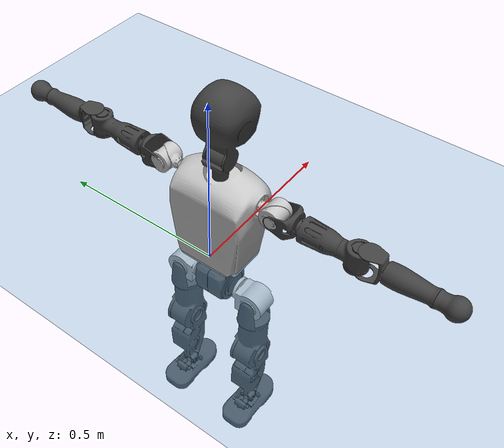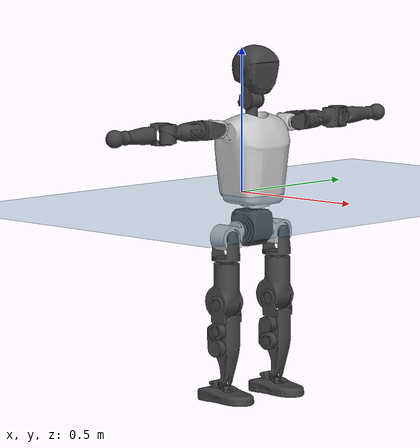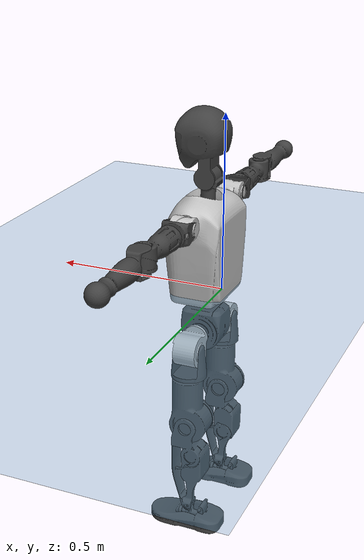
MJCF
<mujoco model="T1">
  <compiler angle="radian" assetdir="assets" balanceinertia="true" inertiafromgeom="false"/>

  <option timestep="0.005" density="1.2" viscosity="2e-05"/>

  <size nkey="1"/>

  <visual>
    <quality shadowsize="8192"/>
    <map shadowclip="0.5"/>
  </visual>

  <default>
    <default class="/">
      <joint armature="0.01" damping="0.01" frictionloss="0.1"/>
      <geom contype="0" conaffinity="0" group="1" solref="-1000 -80"/>
      <site size="0.01 0.005 0.005" group="5"/>
      <general forcelimited="true" biastype="affine" gainprm="25" biasprm="0 -25 -0.6"/>
      <default class="t1">
        <geom rgba="0.25 0.25 0.25 1"/>
        <default class="visual">
          <geom type="mesh" group="2"/>
        </default>
        <default class="collision">
          <geom group="3"/>
        </default>
        <default class="foot">
          <geom size="0.1115 0.05 0.015" type="box" condim="6" group="4" priority="1" solimp="0.015 1 0.015"/>
        </default>
        <default class="reward_collision_sphere">
          <geom group="5" rgba="1 0 0 1"/>
        </default>
      </default>
    </default>
  </default>

  <asset>
    <texture type="skybox" colorspace="auto" name="//unnamed_texture_0" builtin="gradient" rgb1="0.95 0.95 0.95" rgb2="0.95 0.95 0.95" width="100" height="600"/>
    <texture type="2d" colorspace="auto" name="texplane" builtin="checker" rgb1="0.345 0.575 0.748" rgb2="0.345 0.575 0.748" markrgb="1 1 1" width="512" height="512"/>
    <material name="MatPlane" class="/" texture="texplane" texuniform="true" texrepeat="2 2" specular="0.9"/>
    <mesh name="Trunk" class="/" file="Trunk.stl"/>
    <mesh name="H1" class="/" file="H1.stl"/>
    <mesh name="H2" class="/" file="H2.stl"/>
    <mesh name="AL1" class="/" file="AL1.stl"/>
    <mesh name="AL2" class="/" file="AL2.stl"/>
    <mesh name="AL3" class="/" file="AL3.stl"/>
    <mesh name="left_hand_link" class="/" file="left_hand_link.stl"/>
    <mesh name="AR1" class="/" file="AR1.stl"/>
    <mesh name="AR2" class="/" file="AR2.stl"/>
    <mesh name="AR3" class="/" file="AR3.stl"/>
    <mesh name="right_hand_link" class="/" file="right_hand_link.stl"/>
    <mesh name="Waist" class="/" file="Waist.stl"/>
    <mesh name="Hip_Pitch_Left" class="/" file="Hip_Pitch_Left.stl"/>
    <mesh name="Hip_Roll_Left" class="/" file="Hip_Roll_Left.stl"/>
    <mesh name="Hip_Yaw_Left" class="/" file="Hip_Yaw_Left.stl"/>
    <mesh name="Shank_Left" class="/" file="Shank_Left.stl"/>
    <mesh name="Ankle_Cross_Left" class="/" file="Ankle_Cross_Left.stl"/>
    <mesh name="left_foot_link" class="/" file="left_foot_link.stl"/>
    <mesh name="Hip_Pitch_Right" class="/" file="Hip_Pitch_Right.stl"/>
    <mesh name="Hip_Roll_Right" class="/" file="Hip_Roll_Right.stl"/>
    <mesh name="Hip_Yaw_Right" class="/" file="Hip_Yaw_Right.stl"/>
    <mesh name="Shank_Right" class="/" file="Shank_Right.stl"/>
    <mesh name="Ankle_Cross_Right" class="/" file="Ankle_Cross_Right.stl"/>
    <mesh name="right_foot_link" class="/" file="right_foot_link.stl"/>
  </asset>

  <worldbody>
    <geom name="floor" class="/" size="100 100 0.125" type="plane" group="0" material="MatPlane"/>
    <light name="toplight_shadow" class="/" pos="0 0 5" dir="0.0990148 0.0990148 -0.990148" type="directional" ambient="0.04 0.04 0.04" diffuse="0.55 0.55 0.55" specular="0.12 0.12 0.12"/>
    <light name="toplight_fill" class="/" pos="0 0 5" dir="0.0990148 0.0990148 -0.990148" type="directional" castshadow="false" ambient="0.04 0.04 0.04" diffuse="0.3 0.3 0.3" specular="0.08 0.08 0.08"/>
    <body name="trunk" childclass="t1" pos="8.84786e-05 0.000775106 0.000609378" quat="1 0.000135114 -1.06937e-05 4.34299e-05">
      <inertial pos="0.0395179 0.00109114 0.112592" quat="0.999949 -0.00130698 -0.00974148 -0.00226945" mass="11.6382" diaginertia="0.0204322 0.18093 0.0762665"/>
      <joint name="//unnamed_joint_0" type="free" armature="0" damping="0" frictionloss="0"/>
      <geom name="//unnamed_geom_1" class="visual" rgba="0.76 0.76 0.76 1" mesh="Trunk"/>
      <geom name="//unnamed_geom_2" class="collision" size="0.074616 0.099488 0.149232" pos="0.0443275 0 0.127447" type="box"/>
      <geom name="//unnamed_geom_3" class="reward_collision_sphere" size="0.114411" pos="0.0443275 0 0.106205"/>
      <geom name="//unnamed_geom_4" class="reward_collision_sphere" size="0.0149232" pos="0.0443275 0.100623 0"/>
      <geom name="//unnamed_geom_5" class="reward_collision_sphere" size="0.0149232" pos="0.0443275 -0.100623 0"/>
      <geom name="//unnamed_geom_6" class="reward_collision_sphere" size="0.0149232" pos="0.0443275 0.126666 0.19117"/>
      <geom name="//unnamed_geom_7" class="reward_collision_sphere" size="0.0149232" pos="0.0443275 -0.126666 0.19117"/>
      <site name="imu" pos="0.00425853 0.00488117 -0.000610359" size="0.0099488"/>
      <camera name="track" pos="0 -2.36759 0" quat="0.707107 0.707107 0 0" mode="trackcom"/>
      <camera name="ego_camera" pos="0.0901326 0 0.446063" quat="-0.5 -0.5 0.5 0.5"/>
      <body name="H1" pos="0.046542 -0.000953088 0.258241" quat="1 1.81862e-06 1.43953e-06 7.35179e-07">
        <inertial pos="-0.00117795 -0.000142919 0.060528" quat="0.763776 -0.0168726 0.00240953 0.645256" mass="0.438184" diaginertia="5.26007e-05 0.000518908 0.00020438"/>
        <joint name="AAHead_yaw" pos="0 0 0" axis="-0.00368666 -0.00257516 0.99999" stiffness="0.00292466" range="-1.56929 1.54996" armature="0.0100231" damping="0.0100167" frictionloss="0.0902059"/>
        <geom name="//unnamed_geom_8" class="visual" mesh="H1"/>
        <body name="H2" pos="-0.000210414 0.000635241 0.0649876" quat="1 4.12685e-06 -5.33634e-05 7.86197e-05">
          <inertial pos="0.00603893 -5.41839e-06 0.105296" quat="0.988974 0.104305 -0.0691039 -0.0792201" mass="0.618009" diaginertia="0.000447895 0.0044596 0.00231781"/>
          <joint name="Head_pitch" pos="0 0 0" axis="-0.000312478 -1 -0.000668806" range="-1.21729 0.35127" armature="0.00987392" damping="0.00817415" frictionloss="0.102353"/>
          <geom name="//unnamed_geom_9" class="visual" mesh="H2"/>
          <geom name="//unnamed_geom_10" class="collision" size="0.0795904" pos="0.00738791 0 0.116826"/>
          <geom name="//unnamed_geom_11" class="reward_collision_sphere" size="0.0895392" pos="0.0147758 0 0.106205"/>
        </body>
      </body>
      <body name="AL1" pos="0.0439045 0.126529 0.23363" quat="1 0.000467769 0.000813717 -0.00017904">
        <inertial pos="-0.000599058 0.0540611 0.000986685" quat="0.504053 0.496183 -0.508301 0.491287" mass="0.524771" diaginertia="0.000298657 0.00305261 0.00039656"/>
        <joint name="Left_Shoulder_Pitch" pos="0 0 0" axis="0.00198073 0.999998 -0.000155866" range="-3.30684 1.23058" armature="0.0100084" damping="0.0145263" frictionloss="0.0988718"/>
        <geom name="//unnamed_geom_12" class="visual" rgba="0.76 0.76 0.76 1" mesh="AL1"/>
        <body name="AL2" pos="0.000761024 0.057134 0.000676289" quat="1 0.000339486 -0.000133504 -0.000116103">
          <inertial pos="0.00393036 0.0463485 -0.00104408" quat="0.488971 0.516363 -0.489623 0.504525" mass="0.155779" diaginertia="8.8012e-05 0.000804055 0.000241884"/>
          <joint name="Left_Shoulder_Roll" pos="0 0 0" axis="-0.999998 0.000369867 -0.00171418" range="-1.57045 1.73695" armature="0.00979761" damping="0.00373401" frictionloss="0.0981575"/>
          <geom name="//unnamed_geom_13" class="visual" mesh="AL2"/>
          <body name="AL3" pos="0.000695781 0.0739224 -0.000293529" quat="1 4.61365e-05 2.90412e-05 5.25244e-05">
            <inertial pos="-0.00149261 0.100934 0.000611362" quat="0.708239 0.705972 -0.000244323 -0.000539008" mass="1.00771" diaginertia="0.00285425 0.0300329 0.000839712"/>
            <joint name="Left_Elbow_Pitch" pos="0 0 0" axis="0.00285489 -0.99999 0.00349471" range="-2.26367 2.29094" armature="0.00977233" damping="0.00968529" frictionloss="0.100734"/>
            <geom name="//unnamed_geom_14" class="visual" mesh="AL3"/>
            <geom name="//unnamed_geom_15" class="collision" size="0.0298464 0.074616" pos="0 0.0591897 0" quat="0.707105 0.707108 0 0" type="cylinder"/>
            <geom name="//unnamed_geom_16" class="reward_collision_sphere" size="0.0358157"/>
            <body name="left_hand_link" pos="-0.000542727 0.175753 -0.000473683" quat="1 0.000244232 -0.00011705 0.000102221">
              <inertial pos="-5.55165e-05 0.129264 0.000643776" quat="0.707933 0.706277 -0.000598139 -0.00176748" mass="0.324487" diaginertia="0.0017897 0.0189965 0.000288821"/>
              <joint name="Left_Elbow_Yaw" pos="0 0 0" axis="-0.00513691 -0.000333837 0.999987" stiffness="0.000861092" range="-2.46715 0.00463087" armature="0.00999952" damping="0.00224066" frictionloss="0.100205"/>
              <geom name="//unnamed_geom_17" class="visual" mesh="left_hand_link"/>
              <geom name="//unnamed_geom_18" class="collision" size="0.0298464 0.087052" pos="0 0.153893 0" quat="0.707105 0.707108 0 0" type="cylinder"/>
              <geom name="//unnamed_geom_19" class="reward_collision_sphere" size="0.049744"/>
              <geom name="//unnamed_geom_20" class="reward_collision_sphere" size="0.0348208" pos="0 0.130217 0"/>
              <geom name="//unnamed_geom_21" class="reward_collision_sphere" size="0.0348208" pos="0 0.254516 0"/>
            </body>
          </body>
        </body>
      </body>
      <body name="AR1" pos="0.0423689 -0.125278 0.232854" quat="1 3.10005e-05 0.000218161 0.000108936">
        <inertial pos="-0.00029452 -0.0535312 -0.00128122" quat="0.499542 0.499135 -0.504401 0.496893" mass="0.51972" diaginertia="0.000297451 0.00293702 0.000389312"/>
        <joint name="Right_Shoulder_Pitch" pos="0 0 0" axis="0.00476616 -0.999988 0.000535727" range="-1.22494 3.31272" armature="0.0102347" damping="0.00185806" frictionloss="0.0923287"/>
        <geom name="//unnamed_geom_22" class="visual" rgba="0.76 0.76 0.76 1" mesh="AR1"/>
        <body name="AR2" pos="-0.00148318 -0.055294 -0.000438226" quat="1 4.25709e-05 4.22768e-05 0.000105032">
          <inertial pos="0.00368949 -0.0466166 0.000567073" quat="0.51135 0.49287 -0.510454 0.484806" mass="0.156586" diaginertia="8.65935e-05 0.000801002 0.000234622"/>
          <joint name="Right_Shoulder_Roll" pos="0 0 0" axis="-0.999983 0.0057651 0.000699922" stiffness="0.00211322" range="-1.74258 1.5728" armature="0.00995991" damping="0" frictionloss="0.0988111"/>
          <geom name="//unnamed_geom_23" class="visual" mesh="AR2"/>
          <body name="AR3" pos="2.85385e-05 -0.0722791 0.000675931" quat="1 8.88372e-05 -0.000386321 -0.00024029">
            <inertial pos="-0.000781708 -0.101347 -0.000180904" quat="0.709076 0.705128 0.00222119 0.000791643" mass="0.994887" diaginertia="0.00280509 0.0288763 0.000837509"/>
            <joint name="Right_Elbow_Pitch" pos="0 0 0" axis="0.00158942 0.999997 -0.00209649" range="-2.28238 2.2588" armature="0.0100152" damping="0.00844065" frictionloss="0.101225"/>
            <geom name="//unnamed_geom_24" class="visual" mesh="AR3"/>
            <geom name="//unnamed_geom_25" class="collision" size="0.0298464 0.074616" pos="0 -0.0591897 0" quat="0.707105 0.707108 0 0" type="cylinder"/>
            <geom name="//unnamed_geom_26" class="reward_collision_sphere" size="0.0358157"/>
            <body name="right_hand_link" pos="-0.000508922 -0.173207 0.00118937" quat="1 6.41083e-05 2.07301e-06 -0.000193665">
              <inertial pos="-8.99859e-05 -0.129914 -1.26025e-05" quat="0.706365 0.707847 0.00120946 -0.000175058" mass="0.3199" diaginertia="0.00178164 0.0187365 0.000290756"/>
              <joint name="Right_Elbow_Yaw" pos="0 0 0" axis="0.00133729 -0.000397091 0.999999" range="-0.0125 2.442" armature="0.00978752" damping="0.00633029" frictionloss="0.105816"/>
              <geom name="//unnamed_geom_27" class="visual" mesh="right_hand_link"/>
              <geom name="//unnamed_geom_28" class="collision" size="0.0298464 0.087052" pos="0 -0.153893 0" quat="0.707105 0.707108 0 0" type="cylinder"/>
              <geom name="//unnamed_geom_29" class="reward_collision_sphere" size="0.049744"/>
              <geom name="//unnamed_geom_30" class="reward_collision_sphere" size="0.0348208" pos="0 -0.130217 0"/>
              <geom name="//unnamed_geom_31" class="reward_collision_sphere" size="0.0348208" pos="0 -0.254516 0"/>
            </body>
          </body>
        </body>
      </body>
      <body name="Waist" pos="0.0469093 -0.000407845 -0.124213" quat="1 0.000136775 0.000151487 -4.74502e-05">
        <inertial pos="-0.000465229 -0.000325654 0.00817033" quat="0.983917 -0.000106683 -0.178621 0.00112441" mass="2.57091" diaginertia="0.00116887 0.0124791 0.00641644"/>
        <joint name="Waist" pos="0 0 0" axis="0.00420841 -0.00359918 0.999985" range="-1.5535 1.57468" armature="0.00977413" damping="0.0117542" frictionloss="0.099708"/>
        <geom name="//unnamed_geom_32" class="visual" mesh="Waist"/>
        <body name="Hip_Pitch_Left" pos="0.000280902 0.124487 -0.00163613" quat="1 3.13429e-05 5.33663e-06 5.34912e-05">
          <inertial pos="0.000709255 -0.00869238 -0.0198232" quat="0.975344 0.219968 0.0178463 -0.000736601" mass="1.02326" diaginertia="0.000397257 0.00337766 0.00170041"/>
          <joint name="Left_Hip_Pitch" pos="0 0 0" axis="0.0011716 0.999998 0.001892" range="-1.80128 1.59461" armature="0.0106574" damping="0.00793258" frictionloss="0.0958928"/>
          <geom name="//unnamed_geom_33" class="visual" rgba="0.76 0.76 0.76 1" mesh="Hip_Pitch_Left"/>
          <body name="Hip_Roll_Left" pos="0.00106789 0.000682248 -0.0221085" quat="1 -0.000196209 -0.000252308 -4.40215e-05">
            <inertial pos="0.00220039 0.000298739 -0.0581323" quat="0.709867 -0.0121381 -0.00506323 0.704213" mass="0.369052" diaginertia="0.000378593 0.0034543 0.000689404"/>
            <joint name="Left_Hip_Roll" pos="0 0 0" axis="-1 -0.00027303 0.000833032" range="-1.56896 0.207297" armature="0.0105283" damping="0.0153184" frictionloss="0.103771"/>
            <geom name="//unnamed_geom_34" class="visual" mesh="Hip_Roll_Left"/>
            <geom name="//unnamed_geom_35" class="reward_collision_sphere" size="0.0547184"/>
            <body name="Hip_Yaw_Left" pos="0.000735205 0.000246319 -0.0862272" quat="1 -5.38233e-05 -8.48255e-05 0.000170691">
              <inertial pos="-0.00557653 -0.000690306 -0.0952246" quat="0.695736 -0.0328568 -0.0332068 0.716777" mass="2.15057" diaginertia="0.00567295 0.0580811 0.00351106"/>
              <joint name="Left_Hip_Yaw" pos="0 0 0" axis="-0.000966531 0.000132628 -1" range="-0.988541 1.02562" armature="0.00995974" damping="0.0123399" frictionloss="0.0984014"/>
              <geom name="//unnamed_geom_36" class="visual" mesh="Hip_Yaw_Left"/>
              <geom name="//unnamed_geom_37" class="collision" size="0.049744 0.0795904" type="cylinder"/>
              <body name="Shank_Left" pos="-0.00836123 -9.73836e-05 -0.144389" quat="1 -5.92986e-05 1.67565e-05 2.10882e-05">
                <inertial pos="-0.00473817 0.00104276 -0.13136" quat="0.99756 0.00116234 -0.0236992 0.0656571" mass="1.67109" diaginertia="0.0076641 0.0800775 0.00251929"/>
                <joint name="Left_Knee_Pitch" pos="0 0 0" axis="-0.00144123 0.999998 -0.00133413" range="-0.0216439 2.36073" armature="0.00999751" damping="0.00931321" frictionloss="0.0990435"/>
                <geom name="//unnamed_geom_38" class="visual" mesh="Shank_Left"/>
                <geom name="//unnamed_geom_39" class="collision" size="0.049744 0.074616" pos="0 0 -0.127447" type="cylinder"/>
                <geom name="//unnamed_geom_40" class="reward_collision_sphere" size="0.0646672"/>
                <body name="Ankle_Cross_Left" pos="-0.00106193 -0.00017761 -0.297907" quat="1 0.000147503 -0.000145352 -0.000233144">
                  <inertial pos="-0.0016652 -0.000104128 -0.0093906" quat="0.443116 0.551084 0.55103 0.443081" mass="0.071636" diaginertia="6.38831e-06 5.97789e-05 1.52568e-05"/>
                  <joint name="Left_Ankle_Pitch" pos="0 0 0" axis="-0.000459152 1 0.000461366" range="-0.84745 0.357089" armature="0.0103783" damping="0.0143137" frictionloss="0.0973892"/>
                  <geom name="//unnamed_geom_41" class="visual" mesh="Ankle_Cross_Left"/>
                  <body name="left_foot_link" pos="-0.000385455 0.000251231 -0.0127365" quat="1 0.000496778 3.86011e-05 -0.000126266">
                    <inertial pos="-0.000119827 0.00026829 -0.010017" quat="-0.000429546 0.621503 0.00203174 0.783409" mass="0.668874" diaginertia="0.000581639 0.00543933 0.00299586"/>
                    <joint name="Left_Ankle_Roll" pos="0 0 0" axis="-0.999991 0.00434546 0.000117508" range="-0.448677 0.439045" armature="0.00988606" damping="0.0148294" frictionloss="0.0990411"/>
                    <geom name="//unnamed_geom_42" class="visual" mesh="left_foot_link"/>
                    <geom name="left_foot" class="foot" size="0.105153 0.0503094 0.0157792" pos="0.00738791 0 -0.0159308"/>
                    <geom name="//unnamed_geom_44" class="reward_collision_sphere" size="0.0517338" pos="0.00738791 0 -0.0159308"/>
                    <geom name="//unnamed_geom_45" class="reward_collision_sphere" size="0.0298464" pos="0.0701852 -0.0272273 -0.0159308"/>
                    <geom name="//unnamed_geom_46" class="reward_collision_sphere" size="0.0298464" pos="-0.0517154 -0.0272273 -0.0159308"/>
                    <site name="left_foot" class="foot" pos="0.00738791 0 -0.0159308" size="0.0099488"/>
                  </body>
                </body>
              </body>
            </body>
          </body>
        </body>
        <body name="Hip_Pitch_Right" pos="-0.00129575 -0.125826 -0.000582967" quat="1 -0.000193388 9.27809e-05 3.28254e-05">
          <inertial pos="0.000198948 0.00947842 -0.0182577" quat="0.973686 -0.227299 0.0159693 -0.00404564" mass="1.00007" diaginertia="0.000395808 0.00339474 0.0016419"/>
          <joint name="Right_Hip_Pitch" pos="0 0 0" axis="-0.002521 -0.999997 2.92209e-05" range="-1.57211 1.76585" armature="0.0101887" damping="0.0095018" frictionloss="0.0995178"/>
          <geom name="//unnamed_geom_47" class="visual" rgba="0.76 0.76 0.76 1" mesh="Hip_Pitch_Right"/>
          <body name="Hip_Roll_Right" pos="0.00121185 -0.000429896 -0.0209984" quat="1 6.32824e-05 -9.57352e-05 0.000367974">
            <inertial pos="0.00103391 -0.000879245 -0.0575606" quat="0.704395 -0.00770518 0.00014742 0.709766" mass="0.383222" diaginertia="0.000382672 0.00355958 0.000696037"/>
            <joint name="Right_Hip_Roll" pos="0 0 0" axis="-0.999997 -0.00120277 0.00224599" range="-0.165475 1.57276" armature="0.0098737" damping="0.00653924" frictionloss="0.0948361"/>
            <geom name="//unnamed_geom_48" class="visual" mesh="Hip_Roll_Right"/>
            <geom name="//unnamed_geom_49" class="reward_collision_sphere" size="0.0547184"/>
            <body name="Hip_Yaw_Right" pos="0.000553364 0.000135401 -0.0871199" quat="1 -1.98088e-05 -9.61138e-05 0.000141627">
              <inertial pos="-0.00512048 0.000394439 -0.096128" quat="0.716335 -0.032893 -0.0343443 0.696134" mass="2.13856" diaginertia="0.00563993 0.0581314 0.00352943"/>
              <joint name="Right_Hip_Yaw" pos="0 0 0" axis="-0.0102068 0.00839567 -0.999913" stiffness="0.00228397" range="-0.992366 1.00565" armature="0.0102757" damping="0.000691205" frictionloss="0.0998281"/>
              <geom name="//unnamed_geom_50" class="visual" mesh="Hip_Yaw_Right"/>
              <geom name="//unnamed_geom_51" class="collision" size="0.049744 0.0795904" type="cylinder"/>
              <body name="Shank_Right" pos="-0.0097432 -0.000518212 -0.141497" quat="1 0.000308669 -0.000127373 0.000287217">
                <inertial pos="-0.00448916 2.27629e-05 -0.130452" quat="0.999249 0.00096793 -0.0244999 -0.0299946" mass="1.79762" diaginertia="0.00793217 0.0839289 0.00272354"/>
                <joint name="Right_Knee_Pitch" pos="0 0 0" axis="0.0017572 -0.999979 -0.00617284" range="-2.31889 -0.0133787" armature="0.010734" damping="0.00847846" frictionloss="0.0992593"/>
                <geom name="//unnamed_geom_52" class="visual" mesh="Shank_Right"/>
                <geom name="//unnamed_geom_53" class="collision" size="0.049744 0.074616" pos="0 0 -0.127447" type="cylinder"/>
                <geom name="//unnamed_geom_54" class="reward_collision_sphere" size="0.0646672"/>
                <body name="Ankle_Cross_Right" pos="0.000617058 -0.000639396 -0.298029" quat="1 0.000116568 -3.04867e-05 1.76102e-05">
                  <inertial pos="-0.00278015 0.000750725 -0.00854955" quat="0.444439 0.553338 0.549662 0.44064" mass="0.0708255" diaginertia="6.31257e-06 5.88513e-05 1.50326e-05"/>
                  <joint name="Right_Ankle_Pitch" pos="0 0 0" axis="-0.00239991 -0.999993 -0.00280513" range="-0.362208 0.853735" armature="0.00998736" damping="0.0107017" frictionloss="0.0986359"/>
                  <geom name="//unnamed_geom_55" class="visual" mesh="Ankle_Cross_Right"/>
                  <body name="right_foot_link" pos="0.00133226 -0.000915798 -0.0119528" quat="1 -4.34248e-05 7.79693e-05 2.38648e-05">
                    <inertial pos="-0.00161725 -0.000158658 -0.00984502" quat="0.000419546 0.620325 0.000221837 0.784344" mass="0.670625" diaginertia="0.000590912 0.005522 0.00294866"/>
                    <joint name="Right_Ankle_Roll" pos="0 0 0" axis="-0.999995 0.000491742 0.0030395" stiffness="0.00178998" range="-0.466115 0.439506" armature="0.0102343" damping="0.00146912" frictionloss="0.102105"/>
                    <geom name="//unnamed_geom_56" class="visual" mesh="right_foot_link"/>
                    <geom name="right_foot" class="foot" size="0.100051 0.0484666 0.0155901" pos="0.00738791 0 -0.0159308"/>
                    <geom name="//unnamed_geom_58" class="reward_collision_sphere" size="0.0397952"/>
                    <geom name="//unnamed_geom_59" class="reward_collision_sphere" size="0.0298464" pos="0.00738791 0 -0.0159308"/>
                    <geom name="//unnamed_geom_60" class="reward_collision_sphere" size="0.0298464" pos="0.0701852 0.0272273 -0.0159308"/>
                    <geom name="//unnamed_geom_61" class="reward_collision_sphere" size="0.0298464" pos="-0.0517154 0.0272273 -0.0159308"/>
                    <site name="right_foot" class="foot" pos="0.00738791 0 -0.0159308" size="0.0099488"/>
                  </body>
                </body>
              </body>
            </body>
          </body>
        </body>
      </body>
    </body>
  </worldbody>

  <contact>
    <pair class="/" geom1="floor" geom2="left_foot" name="//unnamed_contact_0"/>
    <pair class="/" geom1="floor" geom2="right_foot" name="//unnamed_contact_1"/>
  </contact>

  <actuator>
    <general name="AAHead_yaw" class="/" joint="AAHead_yaw" forcerange="-6.88393 6.88393" gainprm="25.0244" biasprm="0 -25.0244 -0.578694"/>
    <general name="Head_pitch" class="/" joint="Head_pitch" forcerange="-6.95818 6.95818" gainprm="25.0244" biasprm="0 -25.0244 -0.578694"/>
    <general name="Left_Shoulder_Pitch" class="/" joint="Left_Shoulder_Pitch" forcerange="-18.3649 18.3649" gainprm="25.0244" biasprm="0 -25.0244 -0.578694"/>
    <general name="Left_Shoulder_Roll" class="/" joint="Left_Shoulder_Roll" forcerange="-18.1576 18.1576" gainprm="25.0244" biasprm="0 -25.0244 -0.578694"/>
    <general name="Left_Elbow_Pitch" class="/" joint="Left_Elbow_Pitch" forcerange="-17.8479 17.8479" gainprm="25.0244" biasprm="0 -25.0244 -0.578694"/>
    <general name="Left_Elbow_Yaw" class="/" joint="Left_Elbow_Yaw" forcerange="-18.427 18.427" gainprm="25.0244" biasprm="0 -25.0244 -0.578694"/>
    <general name="Right_Shoulder_Pitch" class="/" joint="Right_Shoulder_Pitch" forcerange="-17.5427 17.5427" gainprm="25.0244" biasprm="0 -25.0244 -0.578694"/>
    <general name="Right_Shoulder_Roll" class="/" joint="Right_Shoulder_Roll" forcerange="-18.5256 18.5256" gainprm="25.0244" biasprm="0 -25.0244 -0.578694"/>
    <general name="Right_Elbow_Pitch" class="/" joint="Right_Elbow_Pitch" forcerange="-18.7444 18.7444" gainprm="25.0244" biasprm="0 -25.0244 -0.578694"/>
    <general name="Right_Elbow_Yaw" class="/" joint="Right_Elbow_Yaw" forcerange="-17.3569 17.3569" gainprm="25.0244" biasprm="0 -25.0244 -0.578694"/>
    <general name="Waist" class="/" joint="Waist" forcerange="-28.9035 28.9035" gainprm="25.0244" biasprm="0 -25.0244 -0.578694"/>
    <general name="Left_Hip_Pitch" class="/" joint="Left_Hip_Pitch" forcerange="-44.1335 44.1335" gainprm="25.0244" biasprm="0 -25.0244 -0.578694"/>
    <general name="Left_Hip_Roll" class="/" joint="Left_Hip_Roll" forcerange="-29.8581 29.8581" gainprm="25.0244" biasprm="0 -25.0244 -0.578694"/>
    <general name="Left_Hip_Yaw" class="/" joint="Left_Hip_Yaw" forcerange="-29.5259 29.5259" gainprm="25.0244" biasprm="0 -25.0244 -0.578694"/>
    <general name="Left_Knee_Pitch" class="/" joint="Left_Knee_Pitch" forcerange="-60.5017 60.5017" gainprm="25.0244" biasprm="0 -25.0244 -0.578694"/>
    <general name="Left_Ankle_Pitch" class="/" joint="Left_Ankle_Pitch" forcerange="-19.8178 19.8178" gainprm="25.0244" biasprm="0 -25.0244 -0.578694"/>
    <general name="Left_Ankle_Roll" class="/" joint="Left_Ankle_Roll" forcerange="-15.3424 15.3424" gainprm="25.0244" biasprm="0 -25.0244 -0.578694"/>
    <general name="Right_Hip_Pitch" class="/" joint="Right_Hip_Pitch" forcerange="-44.7801 44.7801" gainprm="25.0244" biasprm="0 -25.0244 -0.578694"/>
    <general name="Right_Hip_Roll" class="/" joint="Right_Hip_Roll" forcerange="-29.7609 29.7609" gainprm="25.0244" biasprm="0 -25.0244 -0.578694"/>
    <general name="Right_Hip_Yaw" class="/" joint="Right_Hip_Yaw" forcerange="-31.4689 31.4689" gainprm="25.0244" biasprm="0 -25.0244 -0.578694"/>
    <general name="Right_Knee_Pitch" class="/" joint="Right_Knee_Pitch" forcerange="-59.6605 59.6605" gainprm="25.0244" biasprm="0 -25.0244 -0.578694"/>
    <general name="Right_Ankle_Pitch" class="/" joint="Right_Ankle_Pitch" forcerange="-19.6729 19.6729" gainprm="25.0244" biasprm="0 -25.0244 -0.578694"/>
    <general name="Right_Ankle_Roll" class="/" joint="Right_Ankle_Roll" forcerange="-15.367 15.367" gainprm="25.0244" biasprm="0 -25.0244 -0.578694"/>
  </actuator>

  <sensor>
    <gyro site="imu" name="imu_angular_velocity"/>
    <velocimeter site="imu" name="imu_linear_velocity"/>
    <framelinvel objtype="site" objname="left_foot" name="left_foot_global_linear_velocity"/>
    <framelinvel objtype="site" objname="right_foot" name="right_foot_global_linear_velocity"/>
  </sensor>

  <keyframe>
    <key name="home" qpos="0 0 0.6385 1 0 0 0 0 0 0 1.4 0 -0.4 0 -1.4 0 0.4 0 -0.4 0 0 0.8 -0.4 0 0.4 0 0 -0.8 0.4 0"/>
  </keyframe>
</mujoco>
